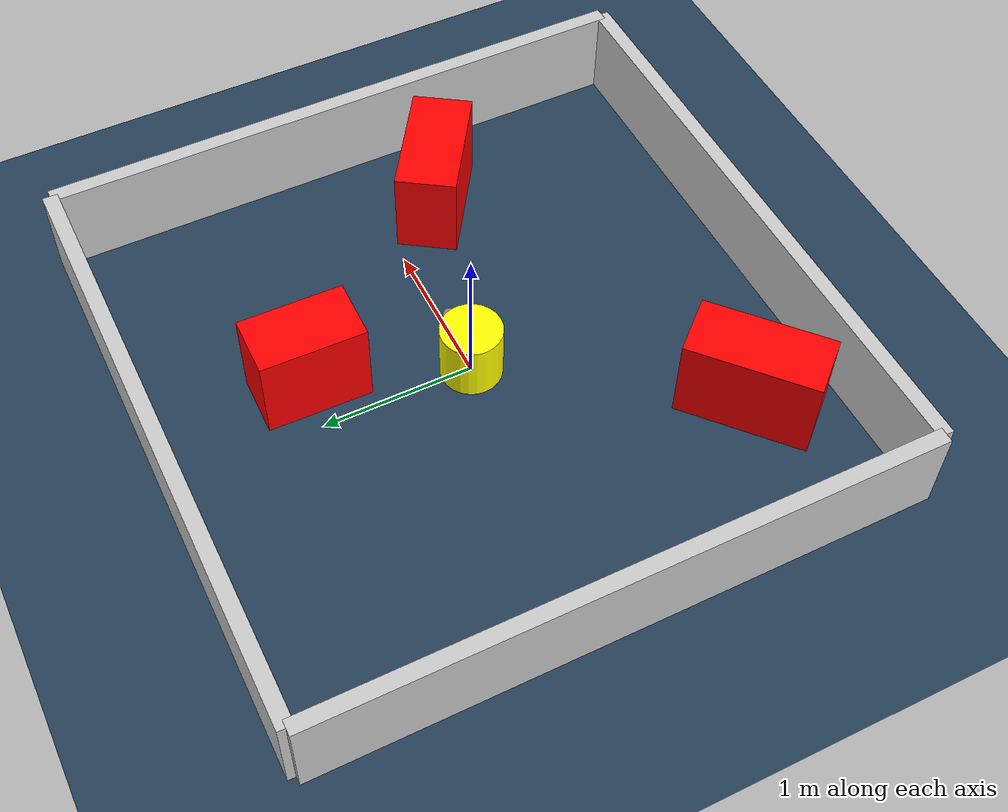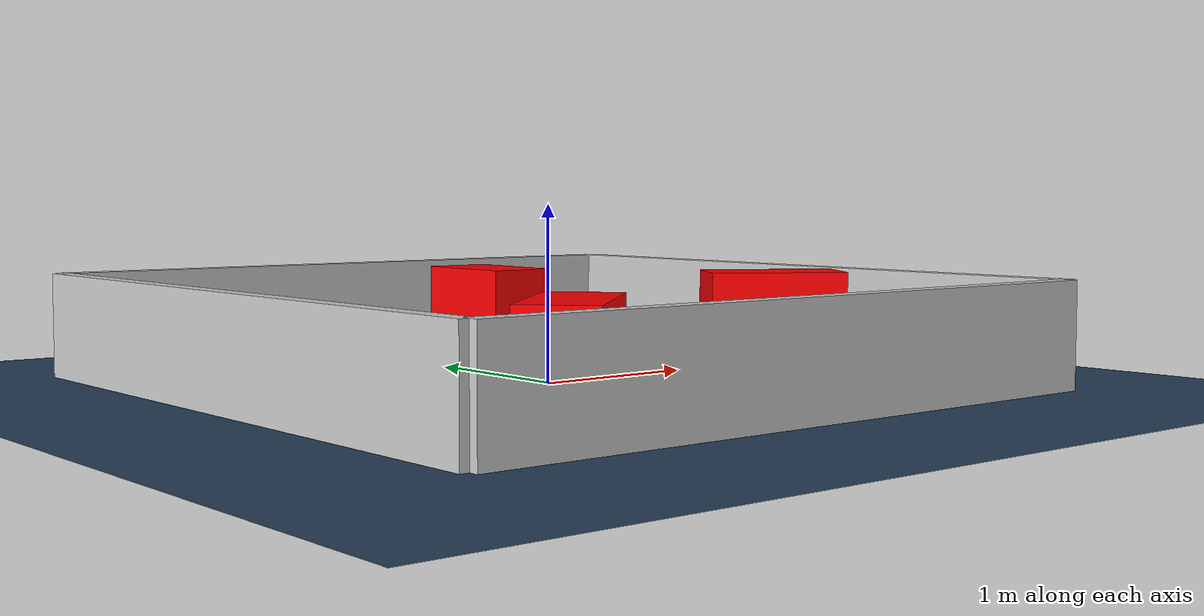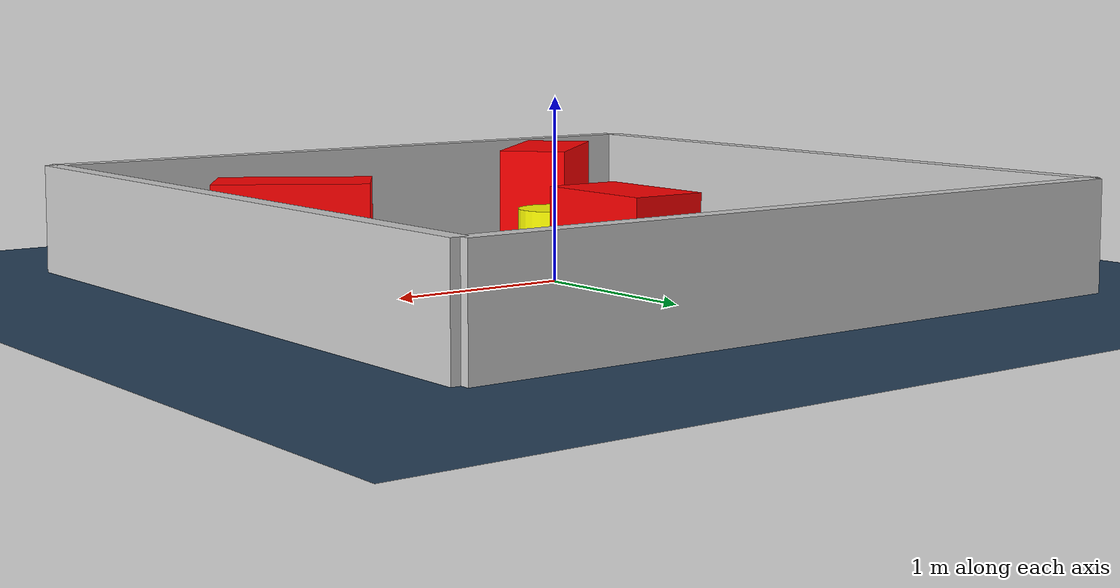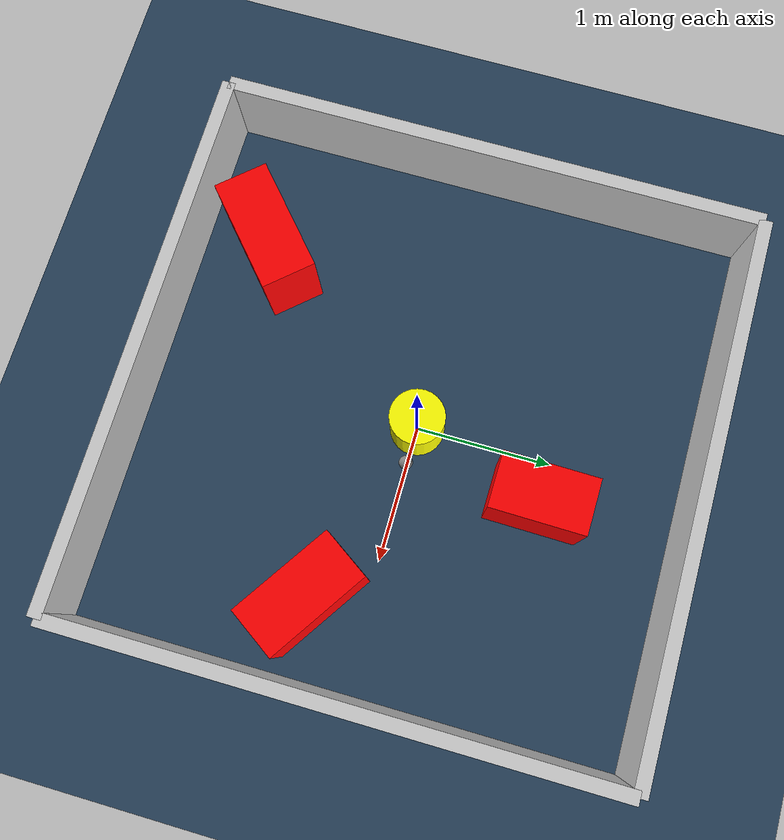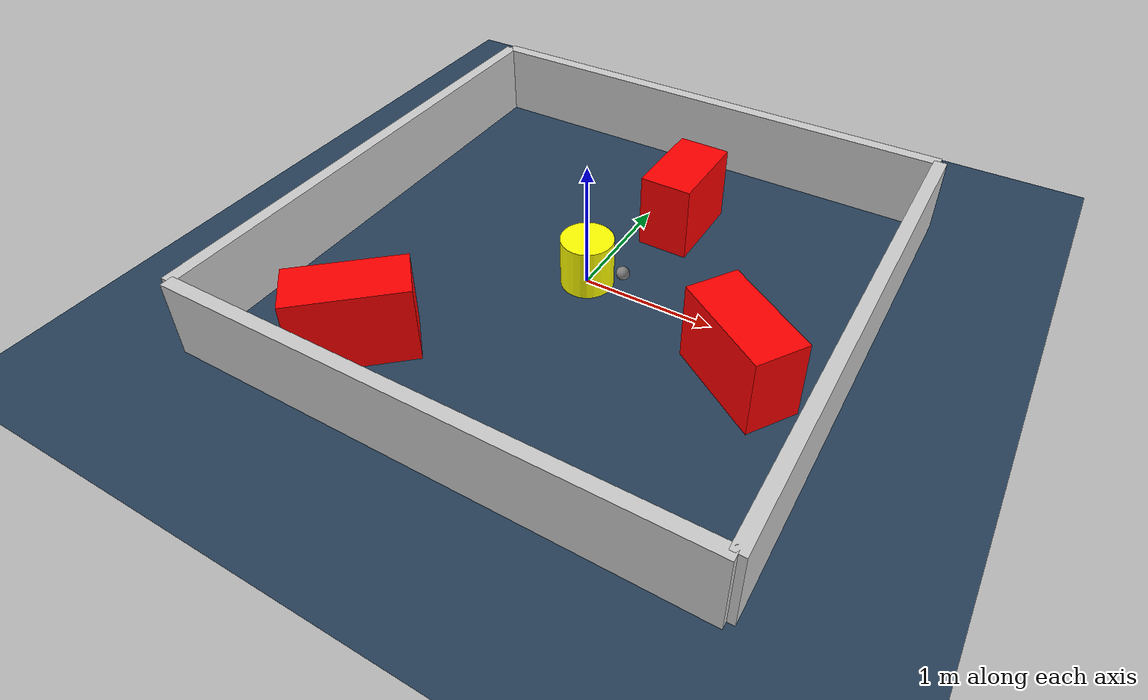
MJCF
<?xml version="1.0" ?>
<mujoco model="generated_environment">
  <option timestep="0.01" integrator="RK4" cone="elliptic"/>
  <default>
    <geom density="1"/>
  </default>
  <asset>
    <texture builtin="gradient" height="3072" rgb1="0.3 0.5 0.7" rgb2="0 0 0" type="skybox" width="512"/>
    <texture builtin="checker" height="300" mark="edge" markrgb="0.8 0.8 0.8" name="groundplane" rgb1="0.2 0.3 0.4" rgb2="0.1 0.2 0.3" type="2d" width="300"/>
    <material name="groundplane" reflectance="0.2" texrepeat="5 5" texture="groundplane" texuniform="true"/>
    <material name="robot" rgba="0.0 1.0 0.0 1"/>
  </asset>
  <worldbody>
    <light dir="0 0 -1" directional="true" pos="0 0 1.5"/>
    <geom condim="4" friction="1.0 0.005 0.001" material="groundplane" name="floor" size="0 0 0.05" type="plane"/>
    <body name="walls">
      <geom name="wall_1" condim="4" pos="-2.0 0.0 0.3" rgba="0.800000011920929 0.800000011920929 0.800000011920929 1.0" size="0.05 2.0 0.3" type="box"/>
      <geom name="wall_2" condim="4" pos="2.0 0.0 0.3" rgba="0.800000011920929 0.800000011920929 0.800000011920929 1.0" size="0.05 2.0 0.3" type="box"/>
      <geom name="wall_3" condim="4" pos="0.0 -2.0 0.3" rgba="0.800000011920929 0.800000011920929 0.800000011920929 1.0" size="2.0 0.05 0.3" type="box"/>
      <geom name="wall_4" condim="4" pos="0.0 2.0 0.3" rgba="0.800000011920929 0.800000011920929 0.800000011920929 1.0" size="2.0 0.05 0.3" type="box"/>
    </body>
    <body name="robot">
      <joint name="joint_x" type="slide" pos="0 0 0" axis="1 0 0"/>
      <joint name="joint_y" type="slide" pos="0 0 0" axis="0 1 0"/>
      <geom name="robot" type="sphere" pos="0.3 0.0 0.2" size="0.05" mass="5." friction="1.0 0.005 0.0001" condim="4" rgba="0.5 0.5 0.5 1.0"/>
      <site name="sensor_ball"/>
    </body>
    <body name="obstacle_movable_1">
      <geom name="obstacle_movable_1" condim="4" pos="0.0 0.0 0.2" euler="0 0 0.0" friction="1.0 0.005 0.001" rgba="1.0 1.0 0.0 1.0" size="0.2 0.2 0.0" type="cylinder" mass="0.1"/>
      <joint type="free"/>
    </body>
    <body name="obstacle_2_static">
      <geom name="obstacle_2_static" condim="4" pos="-1.001602187998358 -1.4095912245724602 0.3" euler="0 0 41.67695003604544" friction="1.0 0.005 0.001" rgba="1 0 0 1" size="0.42524989268701796 0.2 0.3" type="box"/>
    </body>
    <body name="obstacle_3_static">
      <geom name="obstacle_3_static" condim="4" pos="0.3117432192582328 0.9681463858279915 0.3" euler="0 0 89.18821921123005" friction="1.0 0.005 0.001" rgba="1 0 0 1" size="0.3421632240006998 0.2 0.3" type="box"/>
    </body>
    <body name="obstacle_4_static">
      <geom name="obstacle_4_static" condim="4" pos="1.3820537788168665 -0.4059532081972077 0.3" euler="0 0 146.3429181607214" friction="1.0 0.005 0.001" rgba="1 0 0 1" size="0.39902622846800295 0.2 0.3" type="box"/>
    </body>
  </worldbody>
  <actuator>
    <motor name="actuator_x" joint="joint_x" gear="1" ctrlrange="-1 1"/>
    <motor name="actuator_y" joint="joint_y" gear="1" ctrlrange="-1 1"/>
  </actuator>
</mujoco>
